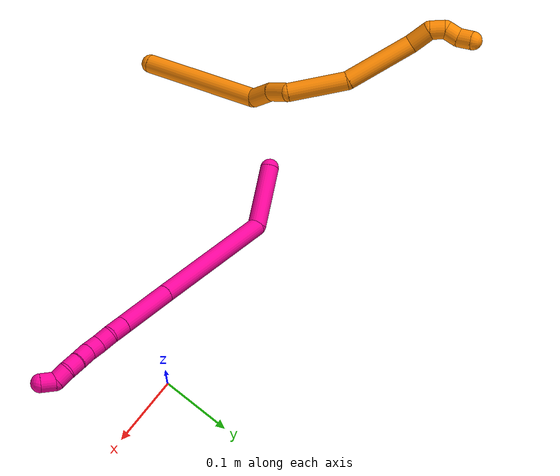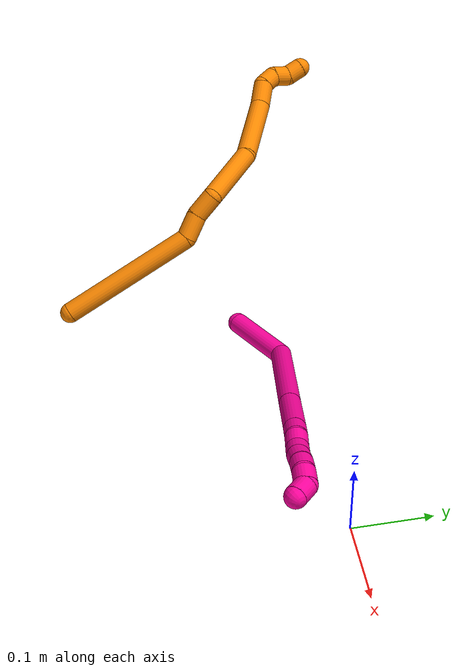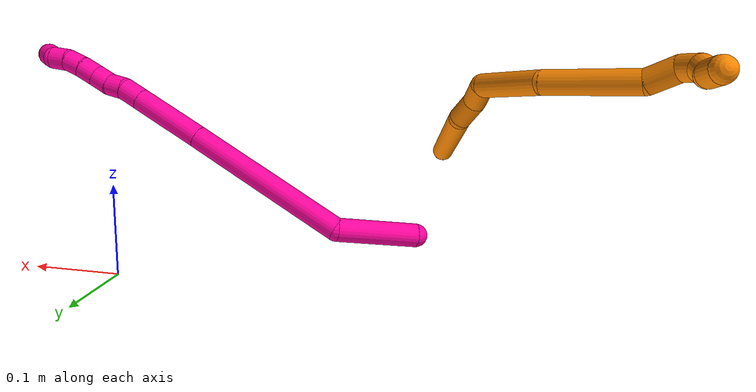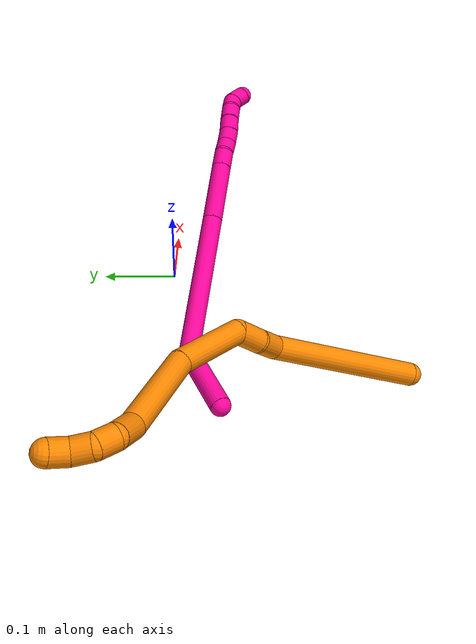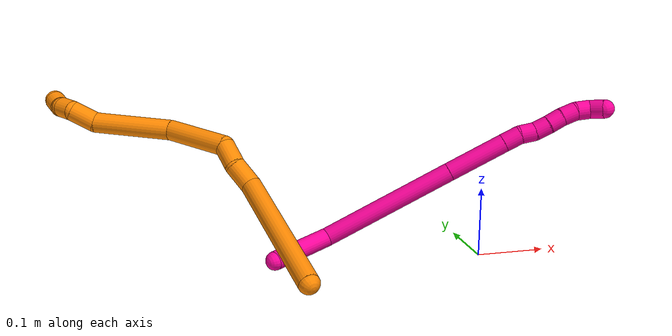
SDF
<sdf version="1.7">
 <world name="default">
  <model name="18">
   <static>0</static>
   <link name="18">
    <collision name="collision-cylinder-e_1_1_4">
     <pose>-0.003618 0.001995 -0.0437 -3.09597 -0.082519 2.1318</pose>
     <geometry><cylinder><radius>0.0125</radius><length>0.087791</length></cylinder></geometry>
     <surface>
      <friction><ode><mu>1.16</mu><mu2>1.16</mu2><slip1>0</slip1><slip2>0</slip2></ode></friction>
      <contact><ode><kp>1e+06</kp><kd>1</kd><max_vel>0</max_vel><min_depth>0.001</min_depth></ode></contact>
     </surface>
    </collision>
    <visual name="visual-cylinder-e_1_1_4">
     <pose>-0.003618 0.001995 -0.0437 -3.09597 -0.082519 2.1318</pose>
     <geometry><cylinder><radius>0.0125</radius><length>0.087791</length></cylinder></geometry>
     <material><ambient>1 0.007843 0.615686 1</ambient></material>
    </visual>
    <collision name="collision-cylinder-e_2_4_5">
     <pose>0.035482 0.039585 -0.161738 -2.69503 0.478185 -1.64166</pose>
     <geometry><cylinder><radius>0.0125</radius><length>0.185665</length></cylinder></geometry>
     <surface>
      <friction><ode><mu>1.16</mu><mu2>1.16</mu2><slip1>0</slip1><slip2>0</slip2></ode></friction>
      <contact><ode><kp>1e+06</kp><kd>1</kd><max_vel>0</max_vel><min_depth>0.001</min_depth></ode></contact>
     </surface>
    </collision>
    <visual name="visual-cylinder-e_2_4_5">
     <pose>0.035482 0.039585 -0.161738 -2.69503 0.478185 -1.64166</pose>
     <geometry><cylinder><radius>0.0125</radius><length>0.185665</length></cylinder></geometry>
     <material><ambient>1 0.007843 0.615686 1</ambient></material>
    </visual>
    <collision name="collision-cylinder-e_3_5_6">
     <pose>0.09684 0.090601 -0.268891 -2.70225 0.474835 -1.65118</pose>
     <geometry><cylinder><radius>0.0125</radius><length>0.081537</length></cylinder></geometry>
     <surface>
      <friction><ode><mu>1.16</mu><mu2>1.16</mu2><slip1>0</slip1><slip2>0</slip2></ode></friction>
      <contact><ode><kp>1e+06</kp><kd>1</kd><max_vel>0</max_vel><min_depth>0.001</min_depth></ode></contact>
     </surface>
    </collision>
    <visual name="visual-cylinder-e_3_5_6">
     <pose>0.09684 0.090601 -0.268891 -2.70225 0.474835 -1.65118</pose>
     <geometry><cylinder><radius>0.0125</radius><length>0.081537</length></cylinder></geometry>
     <material><ambient>1 0.007843 0.615686 1</ambient></material>
    </visual>
    <collision name="collision-cylinder-e_4_6_7">
     <pose>0.121087 0.110539 -0.311417 -2.70638 0.48233 -1.67708</pose>
     <geometry><cylinder><radius>0.0125</radius><length>0.024178</length></cylinder></geometry>
     <surface>
      <friction><ode><mu>1.16</mu><mu2>1.16</mu2><slip1>0</slip1><slip2>0</slip2></ode></friction>
      <contact><ode><kp>1e+06</kp><kd>1</kd><max_vel>0</max_vel><min_depth>0.001</min_depth></ode></contact>
     </surface>
    </collision>
    <visual name="visual-cylinder-e_4_6_7">
     <pose>0.121087 0.110539 -0.311417 -2.70638 0.48233 -1.67708</pose>
     <geometry><cylinder><radius>0.0125</radius><length>0.024178</length></cylinder></geometry>
     <material><ambient>1 0.007843 0.615686 1</ambient></material>
    </visual>
    <collision name="collision-cylinder-e_5_7_8">
     <pose>0.131828 0.116083 -0.329687 -3.0219 0.537152 -2.71286</pose>
     <geometry><cylinder><radius>0.0125</radius><length>0.020066</length></cylinder></geometry>
     <surface>
      <friction><ode><mu>1.16</mu><mu2>1.16</mu2><slip1>0</slip1><slip2>0</slip2></ode></friction>
      <contact><ode><kp>1e+06</kp><kd>1</kd><max_vel>0</max_vel><min_depth>0.001</min_depth></ode></contact>
     </surface>
    </collision>
    <visual name="visual-cylinder-e_5_7_8">
     <pose>0.131828 0.116083 -0.329687 -3.0219 0.537152 -2.71286</pose>
     <geometry><cylinder><radius>0.0125</radius><length>0.020066</length></cylinder></geometry>
     <material><ambient>1 0.007843 0.615686 1</ambient></material>
    </visual>
    <collision name="collision-cylinder-e_6_8_9">
     <pose>0.141707 0.120709 -0.346304 -2.72187 0.493366 -1.73741</pose>
     <geometry><cylinder><radius>0.0125</radius><length>0.02004</length></cylinder></geometry>
     <surface>
      <friction><ode><mu>1.16</mu><mu2>1.16</mu2><slip1>0</slip1><slip2>0</slip2></ode></friction>
      <contact><ode><kp>1e+06</kp><kd>1</kd><max_vel>0</max_vel><min_depth>0.001</min_depth></ode></contact>
     </surface>
    </collision>
    <visual name="visual-cylinder-e_6_8_9">
     <pose>0.141707 0.120709 -0.346304 -2.72187 0.493366 -1.73741</pose>
     <geometry><cylinder><radius>0.0125</radius><length>0.02004</length></cylinder></geometry>
     <material><ambient>1 0.007843 0.615686 1</ambient></material>
    </visual>
    <collision name="collision-cylinder-e_7_9_10">
     <pose>0.150388 0.12829 -0.362933 -2.70631 0.394604 -1.46998</pose>
     <geometry><cylinder><radius>0.0125</radius><length>0.020475</length></cylinder></geometry>
     <surface>
      <friction><ode><mu>1.16</mu><mu2>1.16</mu2><slip1>0</slip1><slip2>0</slip2></ode></friction>
      <contact><ode><kp>1e+06</kp><kd>1</kd><max_vel>0</max_vel><min_depth>0.001</min_depth></ode></contact>
     </surface>
    </collision>
    <visual name="visual-cylinder-e_7_9_10">
     <pose>0.150388 0.12829 -0.362933 -2.70631 0.394604 -1.46998</pose>
     <geometry><cylinder><radius>0.0125</radius><length>0.020475</length></cylinder></geometry>
     <material><ambient>1 0.007843 0.615686 1</ambient></material>
    </visual>
    <collision name="collision-cylinder-e_8_10_11">
     <pose>0.158736 0.13512 -0.380113 -2.82253 0.452827 -1.92221</pose>
     <geometry><cylinder><radius>0.0125</radius><length>0.020169</length></cylinder></geometry>
     <surface>
      <friction><ode><mu>1.16</mu><mu2>1.16</mu2><slip1>0</slip1><slip2>0</slip2></ode></friction>
      <contact><ode><kp>1e+06</kp><kd>1</kd><max_vel>0</max_vel><min_depth>0.001</min_depth></ode></contact>
     </surface>
    </collision>
    <visual name="visual-cylinder-e_8_10_11">
     <pose>0.158736 0.13512 -0.380113 -2.82253 0.452827 -1.92221</pose>
     <geometry><cylinder><radius>0.0125</radius><length>0.020169</length></cylinder></geometry>
     <material><ambient>1 0.007843 0.615686 1</ambient></material>
    </visual>
    <collision name="collision-cylinder-e_9_11_12">
     <pose>0.167763 0.138048 -0.397609 -3.13219 0.478992 -3.10311</pose>
     <geometry><cylinder><radius>0.0125</radius><length>0.020027</length></cylinder></geometry>
     <surface>
      <friction><ode><mu>1.16</mu><mu2>1.16</mu2><slip1>0</slip1><slip2>0</slip2></ode></friction>
      <contact><ode><kp>1e+06</kp><kd>1</kd><max_vel>0</max_vel><min_depth>0.001</min_depth></ode></contact>
     </surface>
    </collision>
    <visual name="visual-cylinder-e_9_11_12">
     <pose>0.167763 0.138048 -0.397609 -3.13219 0.478992 -3.10311</pose>
     <geometry><cylinder><radius>0.0125</radius><length>0.020027</length></cylinder></geometry>
     <material><ambient>1 0.007843 0.615686 1</ambient></material>
    </visual>
    <collision name="collision-cylinder-e_10_12_2">
     <pose>0.181442 0.138754 -0.410735 -2.99571 1.12917 -2.91187</pose>
     <geometry><cylinder><radius>0.0125</radius><length>0.020052</length></cylinder></geometry>
     <surface>
      <friction><ode><mu>1.16</mu><mu2>1.16</mu2><slip1>0</slip1><slip2>0</slip2></ode></friction>
      <contact><ode><kp>1e+06</kp><kd>1</kd><max_vel>0</max_vel><min_depth>0.001</min_depth></ode></contact>
     </surface>
    </collision>
    <visual name="visual-cylinder-e_10_12_2">
     <pose>0.181442 0.138754 -0.410735 -2.99571 1.12917 -2.91187</pose>
     <geometry><cylinder><radius>0.0125</radius><length>0.020052</length></cylinder></geometry>
     <material><ambient>1 0.007843 0.615686 1</ambient></material>
    </visual>
    <collision name="collision-sphere-2">
     <pose>0.190506 0.139377 -0.414975 0 -0 0</pose>
     <geometry><sphere><radius>0.0125</radius></sphere></geometry>
     <surface>
      <friction><ode><mu>1.16</mu><mu2>1.16</mu2><slip1>0</slip1><slip2>0</slip2></ode></friction>
      <contact><ode><kp>1e+06</kp><kd>1</kd><max_vel>0</max_vel><min_depth>0.001</min_depth></ode></contact>
     </surface>
    </collision>
    <visual name="visual-sphere-2">
     <pose>0.190506 0.139377 -0.414975 0 -0 0</pose>
     <geometry><sphere><radius>0.0125</radius></sphere></geometry>
     <material><ambient>1 0.007843 0.615686 1</ambient></material>
    </visual>
    <collision name="collision-sphere-12">
     <pose>0.172378 0.138131 -0.406495 0 -0 0</pose>
     <geometry><sphere><radius>0.0125</radius></sphere></geometry>
     <surface>
      <friction><ode><mu>1.16</mu><mu2>1.16</mu2><slip1>0</slip1><slip2>0</slip2></ode></friction>
      <contact><ode><kp>1e+06</kp><kd>1</kd><max_vel>0</max_vel><min_depth>0.001</min_depth></ode></contact>
     </surface>
    </collision>
    <visual name="visual-sphere-12">
     <pose>0.172378 0.138131 -0.406495 0 -0 0</pose>
     <geometry><sphere><radius>0.0125</radius></sphere></geometry>
     <material><ambient>1 0.007843 0.615686 1</ambient></material>
    </visual>
    <collision name="collision-sphere-11">
     <pose>0.163148 0.137964 -0.388723 0 -0 0</pose>
     <geometry><sphere><radius>0.0125</radius></sphere></geometry>
     <surface>
      <friction><ode><mu>1.16</mu><mu2>1.16</mu2><slip1>0</slip1><slip2>0</slip2></ode></friction>
      <contact><ode><kp>1e+06</kp><kd>1</kd><max_vel>0</max_vel><min_depth>0.001</min_depth></ode></contact>
     </surface>
    </collision>
    <visual name="visual-sphere-11">
     <pose>0.163148 0.137964 -0.388723 0 -0 0</pose>
     <geometry><sphere><radius>0.0125</radius></sphere></geometry>
     <material><ambient>1 0.007843 0.615686 1</ambient></material>
    </visual>
    <collision name="collision-sphere-10">
     <pose>0.154324 0.132276 -0.371502 0 -0 0</pose>
     <geometry><sphere><radius>0.0125</radius></sphere></geometry>
     <surface>
      <friction><ode><mu>1.16</mu><mu2>1.16</mu2><slip1>0</slip1><slip2>0</slip2></ode></friction>
      <contact><ode><kp>1e+06</kp><kd>1</kd><max_vel>0</max_vel><min_depth>0.001</min_depth></ode></contact>
     </surface>
    </collision>
    <visual name="visual-sphere-10">
     <pose>0.154324 0.132276 -0.371502 0 -0 0</pose>
     <geometry><sphere><radius>0.0125</radius></sphere></geometry>
     <material><ambient>1 0.007843 0.615686 1</ambient></material>
    </visual>
    <collision name="collision-sphere-9">
     <pose>0.146452 0.124305 -0.354363 0 -0 0</pose>
     <geometry><sphere><radius>0.0125</radius></sphere></geometry>
     <surface>
      <friction><ode><mu>1.16</mu><mu2>1.16</mu2><slip1>0</slip1><slip2>0</slip2></ode></friction>
      <contact><ode><kp>1e+06</kp><kd>1</kd><max_vel>0</max_vel><min_depth>0.001</min_depth></ode></contact>
     </surface>
    </collision>
    <visual name="visual-sphere-9">
     <pose>0.146452 0.124305 -0.354363 0 -0 0</pose>
     <geometry><sphere><radius>0.0125</radius></sphere></geometry>
     <material><ambient>1 0.007843 0.615686 1</ambient></material>
    </visual>
    <collision name="collision-sphere-4">
     <pose>-0.007236 0.00399 -0.087401 0 -0 0</pose>
     <geometry><sphere><radius>0.0125</radius></sphere></geometry>
     <surface>
      <friction><ode><mu>1.16</mu><mu2>1.16</mu2><slip1>0</slip1><slip2>0</slip2></ode></friction>
      <contact><ode><kp>1e+06</kp><kd>1</kd><max_vel>0</max_vel><min_depth>0.001</min_depth></ode></contact>
     </surface>
    </collision>
    <visual name="visual-sphere-4">
     <pose>-0.007236 0.00399 -0.087401 0 -0 0</pose>
     <geometry><sphere><radius>0.0125</radius></sphere></geometry>
     <material><ambient>1 0.007843 0.615686 1</ambient></material>
    </visual>
    <collision name="collision-sphere-1">
     <geometry><sphere><radius>0.0125</radius></sphere></geometry>
     <surface>
      <friction><ode><mu>1.16</mu><mu2>1.16</mu2><slip1>0</slip1><slip2>0</slip2></ode></friction>
      <contact><ode><kp>1e+06</kp><kd>1</kd><max_vel>0</max_vel><min_depth>0.001</min_depth></ode></contact>
     </surface>
    </collision>
    <visual name="visual-sphere-1">
     <geometry><sphere><radius>0.0125</radius></sphere></geometry>
     <material><ambient>1 0.007843 0.615686 1</ambient></material>
    </visual>
    <collision name="collision-sphere-8">
     <pose>0.136961 0.117113 -0.338245 0 -0 0</pose>
     <geometry><sphere><radius>0.0125</radius></sphere></geometry>
     <surface>
      <friction><ode><mu>1.16</mu><mu2>1.16</mu2><slip1>0</slip1><slip2>0</slip2></ode></friction>
      <contact><ode><kp>1e+06</kp><kd>1</kd><max_vel>0</max_vel><min_depth>0.001</min_depth></ode></contact>
     </surface>
    </collision>
    <visual name="visual-sphere-8">
     <pose>0.136961 0.117113 -0.338245 0 -0 0</pose>
     <geometry><sphere><radius>0.0125</radius></sphere></geometry>
     <material><ambient>1 0.007843 0.615686 1</ambient></material>
    </visual>
    <collision name="collision-sphere-5">
     <pose>0.078201 0.075179 -0.236076 0 -0 0</pose>
     <geometry><sphere><radius>0.0125</radius></sphere></geometry>
     <surface>
      <friction><ode><mu>1.16</mu><mu2>1.16</mu2><slip1>0</slip1><slip2>0</slip2></ode></friction>
      <contact><ode><kp>1e+06</kp><kd>1</kd><max_vel>0</max_vel><min_depth>0.001</min_depth></ode></contact>
     </surface>
    </collision>
    <visual name="visual-sphere-5">
     <pose>0.078201 0.075179 -0.236076 0 -0 0</pose>
     <geometry><sphere><radius>0.0125</radius></sphere></geometry>
     <material><ambient>1 0.007843 0.615686 1</ambient></material>
    </visual>
    <collision name="collision-sphere-6">
     <pose>0.115479 0.106023 -0.301705 0 -0 0</pose>
     <geometry><sphere><radius>0.0125</radius></sphere></geometry>
     <surface>
      <friction><ode><mu>1.16</mu><mu2>1.16</mu2><slip1>0</slip1><slip2>0</slip2></ode></friction>
      <contact><ode><kp>1e+06</kp><kd>1</kd><max_vel>0</max_vel><min_depth>0.001</min_depth></ode></contact>
     </surface>
    </collision>
    <visual name="visual-sphere-6">
     <pose>0.115479 0.106023 -0.301705 0 -0 0</pose>
     <geometry><sphere><radius>0.0125</radius></sphere></geometry>
     <material><ambient>1 0.007843 0.615686 1</ambient></material>
    </visual>
    <collision name="collision-sphere-7">
     <pose>0.126694 0.115054 -0.321129 0 -0 0</pose>
     <geometry><sphere><radius>0.0125</radius></sphere></geometry>
     <surface>
      <friction><ode><mu>1.16</mu><mu2>1.16</mu2><slip1>0</slip1><slip2>0</slip2></ode></friction>
      <contact><ode><kp>1e+06</kp><kd>1</kd><max_vel>0</max_vel><min_depth>0.001</min_depth></ode></contact>
     </surface>
    </collision>
    <visual name="visual-sphere-7">
     <pose>0.126694 0.115054 -0.321129 0 -0 0</pose>
     <geometry><sphere><radius>0.0125</radius></sphere></geometry>
     <material><ambient>1 0.007843 0.615686 1</ambient></material>
    </visual>
    <inertial>
     <pose>0.071716 0.066464 -0.216343 0 -0 0</pose>
     <mass>0.5</mass>
     <inertia>
      <ixx>-0.000536</ixx>
      <ixy>0</ixy>
      <ixz>0</ixz>
      <iyy>-0.000274</iyy>
      <iyz>0</iyz>
      <izz>-0.000535</izz>
     </inertia>
    </inertial>
   </link>
   <pose>-0.313542 -0.073857 0.047164 1.66259 -0.021219 -1.18491</pose>
  </model>
  <model name="19">
   <static>0</static>
   <link name="19">
    <collision name="collision-cylinder-e_1_1_4">
     <pose>-0.002782 -0.008651 -0.084406 3.03946 -0.032772 -0.620533</pose>
     <geometry><cylinder><radius>0.0125</radius><length>0.169788</length></cylinder></geometry>
     <surface>
      <friction><ode><mu>1.16</mu><mu2>1.16</mu2><slip1>0</slip1><slip2>0</slip2></ode></friction>
      <contact><ode><kp>1e+06</kp><kd>1</kd><max_vel>0</max_vel><min_depth>0.001</min_depth></ode></contact>
     </surface>
    </collision>
    <visual name="visual-cylinder-e_1_1_4">
     <pose>-0.002782 -0.008651 -0.084406 3.03946 -0.032772 -0.620533</pose>
     <geometry><cylinder><radius>0.0125</radius><length>0.169788</length></cylinder></geometry>
     <material><ambient>0.996078 0.537255 0 1</ambient></material>
    </visual>
    <collision name="collision-cylinder-e_2_4_5">
     <pose>0.00155 -0.022612 -0.181765 2.7525 0.470115 1.76465</pose>
     <geometry><cylinder><radius>0.0125</radius><length>0.031405</length></cylinder></geometry>
     <surface>
      <friction><ode><mu>1.16</mu><mu2>1.16</mu2><slip1>0</slip1><slip2>0</slip2></ode></friction>
      <contact><ode><kp>1e+06</kp><kd>1</kd><max_vel>0</max_vel><min_depth>0.001</min_depth></ode></contact>
     </surface>
    </collision>
    <visual name="visual-cylinder-e_2_4_5">
     <pose>0.00155 -0.022612 -0.181765 2.7525 0.470115 1.76465</pose>
     <geometry><cylinder><radius>0.0125</radius><length>0.031405</length></cylinder></geometry>
     <material><ambient>0.996078 0.537255 0 1</ambient></material>
    </visual>
    <collision name="collision-cylinder-e_3_5_6">
     <pose>0.011321 -0.033048 -0.20883 2.79323 0.175254 0.926116</pose>
     <geometry><cylinder><radius>0.0125</radius><length>0.030495</length></cylinder></geometry>
     <surface>
      <friction><ode><mu>1.16</mu><mu2>1.16</mu2><slip1>0</slip1><slip2>0</slip2></ode></friction>
      <contact><ode><kp>1e+06</kp><kd>1</kd><max_vel>0</max_vel><min_depth>0.001</min_depth></ode></contact>
     </surface>
    </collision>
    <visual name="visual-cylinder-e_3_5_6">
     <pose>0.011321 -0.033048 -0.20883 2.79323 0.175254 0.926116</pose>
     <geometry><cylinder><radius>0.0125</radius><length>0.030495</length></cylinder></geometry>
     <material><ambient>0.996078 0.537255 0 1</ambient></material>
    </visual>
    <collision name="collision-cylinder-e_4_6_7">
     <pose>0.032562 -0.027755 -0.256563 -2.84111 0.485744 -2.04465</pose>
     <geometry><cylinder><radius>0.0125</radius><length>0.079604</length></cylinder></geometry>
     <surface>
      <friction><ode><mu>1.16</mu><mu2>1.16</mu2><slip1>0</slip1><slip2>0</slip2></ode></friction>
      <contact><ode><kp>1e+06</kp><kd>1</kd><max_vel>0</max_vel><min_depth>0.001</min_depth></ode></contact>
     </surface>
    </collision>
    <visual name="visual-cylinder-e_4_6_7">
     <pose>0.032562 -0.027755 -0.256563 -2.84111 0.485744 -2.04465</pose>
     <geometry><cylinder><radius>0.0125</radius><length>0.079604</length></cylinder></geometry>
     <material><ambient>0.996078 0.537255 0 1</ambient></material>
    </visual>
    <collision name="collision-cylinder-e_5_7_8">
     <pose>0.086329 -0.001698 -0.319432 -2.65058 0.814912 -2.08965</pose>
     <geometry><cylinder><radius>0.0125</radius><length>0.096706</length></cylinder></geometry>
     <surface>
      <friction><ode><mu>1.16</mu><mu2>1.16</mu2><slip1>0</slip1><slip2>0</slip2></ode></friction>
      <contact><ode><kp>1e+06</kp><kd>1</kd><max_vel>0</max_vel><min_depth>0.001</min_depth></ode></contact>
     </surface>
    </collision>
    <visual name="visual-cylinder-e_5_7_8">
     <pose>0.086329 -0.001698 -0.319432 -2.65058 0.814912 -2.08965</pose>
     <geometry><cylinder><radius>0.0125</radius><length>0.096706</length></cylinder></geometry>
     <material><ambient>0.996078 0.537255 0 1</ambient></material>
    </visual>
    <collision name="collision-cylinder-e_6_8_9">
     <pose>0.133452 0.013037 -0.358942 3.05377 0.858882 2.95027</pose>
     <geometry><cylinder><radius>0.0125</radius><length>0.031537</length></cylinder></geometry>
     <surface>
      <friction><ode><mu>1.16</mu><mu2>1.16</mu2><slip1>0</slip1><slip2>0</slip2></ode></friction>
      <contact><ode><kp>1e+06</kp><kd>1</kd><max_vel>0</max_vel><min_depth>0.001</min_depth></ode></contact>
     </surface>
    </collision>
    <visual name="visual-cylinder-e_6_8_9">
     <pose>0.133452 0.013037 -0.358942 3.05377 0.858882 2.95027</pose>
     <geometry><cylinder><radius>0.0125</radius><length>0.031537</length></cylinder></geometry>
     <material><ambient>0.996078 0.537255 0 1</ambient></material>
    </visual>
    <collision name="collision-cylinder-e_7_9_10">
     <pose>0.148758 0.014943 -0.37838 -2.84446 0.337473 -1.6999</pose>
     <geometry><cylinder><radius>0.0125</radius><length>0.020342</length></cylinder></geometry>
     <surface>
      <friction><ode><mu>1.16</mu><mu2>1.16</mu2><slip1>0</slip1><slip2>0</slip2></ode></friction>
      <contact><ode><kp>1e+06</kp><kd>1</kd><max_vel>0</max_vel><min_depth>0.001</min_depth></ode></contact>
     </surface>
    </collision>
    <visual name="visual-cylinder-e_7_9_10">
     <pose>0.148758 0.014943 -0.37838 -2.84446 0.337473 -1.6999</pose>
     <geometry><cylinder><radius>0.0125</radius><length>0.020342</length></cylinder></geometry>
     <material><ambient>0.996078 0.537255 0 1</ambient></material>
    </visual>
    <collision name="collision-cylinder-e_8_10_11">
     <pose>0.149448 0.021845 -0.396311 -2.70428 -0.270371 1.09855</pose>
     <geometry><cylinder><radius>0.0125</radius><length>0.020054</length></cylinder></geometry>
     <surface>
      <friction><ode><mu>1.16</mu><mu2>1.16</mu2><slip1>0</slip1><slip2>0</slip2></ode></friction>
      <contact><ode><kp>1e+06</kp><kd>1</kd><max_vel>0</max_vel><min_depth>0.001</min_depth></ode></contact>
     </surface>
    </collision>
    <visual name="visual-cylinder-e_8_10_11">
     <pose>0.149448 0.021845 -0.396311 -2.70428 -0.270371 1.09855</pose>
     <geometry><cylinder><radius>0.0125</radius><length>0.020054</length></cylinder></geometry>
     <material><ambient>0.996078 0.537255 0 1</ambient></material>
    </visual>
    <collision name="collision-cylinder-e_9_11_2">
     <pose>0.147397 0.026406 -0.415068 -3.09479 0.062599 -1.85767</pose>
     <geometry><cylinder><radius>0.0125</radius><length>0.020069</length></cylinder></geometry>
     <surface>
      <friction><ode><mu>1.16</mu><mu2>1.16</mu2><slip1>0</slip1><slip2>0</slip2></ode></friction>
      <contact><ode><kp>1e+06</kp><kd>1</kd><max_vel>0</max_vel><min_depth>0.001</min_depth></ode></contact>
     </surface>
    </collision>
    <visual name="visual-cylinder-e_9_11_2">
     <pose>0.147397 0.026406 -0.415068 -3.09479 0.062599 -1.85767</pose>
     <geometry><cylinder><radius>0.0125</radius><length>0.020069</length></cylinder></geometry>
     <material><ambient>0.996078 0.537255 0 1</ambient></material>
    </visual>
    <collision name="collision-sphere-2">
     <pose>0.148025 0.026875 -0.425072 0 -0 0</pose>
     <geometry><sphere><radius>0.0125</radius></sphere></geometry>
     <surface>
      <friction><ode><mu>1.16</mu><mu2>1.16</mu2><slip1>0</slip1><slip2>0</slip2></ode></friction>
      <contact><ode><kp>1e+06</kp><kd>1</kd><max_vel>0</max_vel><min_depth>0.001</min_depth></ode></contact>
     </surface>
    </collision>
    <visual name="visual-sphere-2">
     <pose>0.148025 0.026875 -0.425072 0 -0 0</pose>
     <geometry><sphere><radius>0.0125</radius></sphere></geometry>
     <material><ambient>0.996078 0.537255 0 1</ambient></material>
    </visual>
    <collision name="collision-sphere-11">
     <pose>0.14677 0.025938 -0.405064 0 -0 0</pose>
     <geometry><sphere><radius>0.0125</radius></sphere></geometry>
     <surface>
      <friction><ode><mu>1.16</mu><mu2>1.16</mu2><slip1>0</slip1><slip2>0</slip2></ode></friction>
      <contact><ode><kp>1e+06</kp><kd>1</kd><max_vel>0</max_vel><min_depth>0.001</min_depth></ode></contact>
     </surface>
    </collision>
    <visual name="visual-sphere-11">
     <pose>0.14677 0.025938 -0.405064 0 -0 0</pose>
     <geometry><sphere><radius>0.0125</radius></sphere></geometry>
     <material><ambient>0.996078 0.537255 0 1</ambient></material>
    </visual>
    <collision name="collision-sphere-10">
     <pose>0.152126 0.017753 -0.387557 0 -0 0</pose>
     <geometry><sphere><radius>0.0125</radius></sphere></geometry>
     <surface>
      <friction><ode><mu>1.16</mu><mu2>1.16</mu2><slip1>0</slip1><slip2>0</slip2></ode></friction>
      <contact><ode><kp>1e+06</kp><kd>1</kd><max_vel>0</max_vel><min_depth>0.001</min_depth></ode></contact>
     </surface>
    </collision>
    <visual name="visual-sphere-10">
     <pose>0.152126 0.017753 -0.387557 0 -0 0</pose>
     <geometry><sphere><radius>0.0125</radius></sphere></geometry>
     <material><ambient>0.996078 0.537255 0 1</ambient></material>
    </visual>
    <collision name="collision-sphere-9">
     <pose>0.145391 0.012133 -0.369204 0 -0 0</pose>
     <geometry><sphere><radius>0.0125</radius></sphere></geometry>
     <surface>
      <friction><ode><mu>1.16</mu><mu2>1.16</mu2><slip1>0</slip1><slip2>0</slip2></ode></friction>
      <contact><ode><kp>1e+06</kp><kd>1</kd><max_vel>0</max_vel><min_depth>0.001</min_depth></ode></contact>
     </surface>
    </collision>
    <visual name="visual-sphere-9">
     <pose>0.145391 0.012133 -0.369204 0 -0 0</pose>
     <geometry><sphere><radius>0.0125</radius></sphere></geometry>
     <material><ambient>0.996078 0.537255 0 1</ambient></material>
    </visual>
    <collision name="collision-sphere-4">
     <pose>-0.005563 -0.017302 -0.168812 0 -0 0</pose>
     <geometry><sphere><radius>0.0125</radius></sphere></geometry>
     <surface>
      <friction><ode><mu>1.16</mu><mu2>1.16</mu2><slip1>0</slip1><slip2>0</slip2></ode></friction>
      <contact><ode><kp>1e+06</kp><kd>1</kd><max_vel>0</max_vel><min_depth>0.001</min_depth></ode></contact>
     </surface>
    </collision>
    <visual name="visual-sphere-4">
     <pose>-0.005563 -0.017302 -0.168812 0 -0 0</pose>
     <geometry><sphere><radius>0.0125</radius></sphere></geometry>
     <material><ambient>0.996078 0.537255 0 1</ambient></material>
    </visual>
    <collision name="collision-sphere-1">
     <geometry><sphere><radius>0.0125</radius></sphere></geometry>
     <surface>
      <friction><ode><mu>1.16</mu><mu2>1.16</mu2><slip1>0</slip1><slip2>0</slip2></ode></friction>
      <contact><ode><kp>1e+06</kp><kd>1</kd><max_vel>0</max_vel><min_depth>0.001</min_depth></ode></contact>
     </surface>
    </collision>
    <visual name="visual-sphere-1">
     <geometry><sphere><radius>0.0125</radius></sphere></geometry>
     <material><ambient>0.996078 0.537255 0 1</ambient></material>
    </visual>
    <collision name="collision-sphere-8">
     <pose>0.121514 0.01394 -0.34868 0 -0 0</pose>
     <geometry><sphere><radius>0.0125</radius></sphere></geometry>
     <surface>
      <friction><ode><mu>1.16</mu><mu2>1.16</mu2><slip1>0</slip1><slip2>0</slip2></ode></friction>
      <contact><ode><kp>1e+06</kp><kd>1</kd><max_vel>0</max_vel><min_depth>0.001</min_depth></ode></contact>
     </surface>
    </collision>
    <visual name="visual-sphere-8">
     <pose>0.121514 0.01394 -0.34868 0 -0 0</pose>
     <geometry><sphere><radius>0.0125</radius></sphere></geometry>
     <material><ambient>0.996078 0.537255 0 1</ambient></material>
    </visual>
    <collision name="collision-sphere-5">
     <pose>0.008663 -0.027923 -0.194717 0 -0 0</pose>
     <geometry><sphere><radius>0.0125</radius></sphere></geometry>
     <surface>
      <friction><ode><mu>1.16</mu><mu2>1.16</mu2><slip1>0</slip1><slip2>0</slip2></ode></friction>
      <contact><ode><kp>1e+06</kp><kd>1</kd><max_vel>0</max_vel><min_depth>0.001</min_depth></ode></contact>
     </surface>
    </collision>
    <visual name="visual-sphere-5">
     <pose>0.008663 -0.027923 -0.194717 0 -0 0</pose>
     <geometry><sphere><radius>0.0125</radius></sphere></geometry>
     <material><ambient>0.996078 0.537255 0 1</ambient></material>
    </visual>
    <collision name="collision-sphere-6">
     <pose>0.01398 -0.038173 -0.222942 0 -0 0</pose>
     <geometry><sphere><radius>0.0125</radius></sphere></geometry>
     <surface>
      <friction><ode><mu>1.16</mu><mu2>1.16</mu2><slip1>0</slip1><slip2>0</slip2></ode></friction>
      <contact><ode><kp>1e+06</kp><kd>1</kd><max_vel>0</max_vel><min_depth>0.001</min_depth></ode></contact>
     </surface>
    </collision>
    <visual name="visual-sphere-6">
     <pose>0.01398 -0.038173 -0.222942 0 -0 0</pose>
     <geometry><sphere><radius>0.0125</radius></sphere></geometry>
     <material><ambient>0.996078 0.537255 0 1</ambient></material>
    </visual>
    <collision name="collision-sphere-7">
     <pose>0.051144 -0.017337 -0.290183 0 -0 0</pose>
     <geometry><sphere><radius>0.0125</radius></sphere></geometry>
     <surface>
      <friction><ode><mu>1.16</mu><mu2>1.16</mu2><slip1>0</slip1><slip2>0</slip2></ode></friction>
      <contact><ode><kp>1e+06</kp><kd>1</kd><max_vel>0</max_vel><min_depth>0.001</min_depth></ode></contact>
     </surface>
    </collision>
    <visual name="visual-sphere-7">
     <pose>0.051144 -0.017337 -0.290183 0 -0 0</pose>
     <geometry><sphere><radius>0.0125</radius></sphere></geometry>
     <material><ambient>0.996078 0.537255 0 1</ambient></material>
    </visual>
    <inertial>
     <pose>0.048104 -0.007754 -0.226034 0 -0 0</pose>
     <mass>0.5</mass>
     <inertia>
      <ixx>-1.6e-05</ixx>
      <ixy>0</ixy>
      <ixz>0</ixz>
      <iyy>-0.000564</iyy>
      <iyz>0</iyz>
      <izz>-9.7e-05</izz>
     </inertia>
    </inertial>
   </link>
   <pose>-0.316066 -0.283268 0.099246 -1.89827 -0.251849 -2.76862</pose>
  </model>
 </world>
</sdf>
